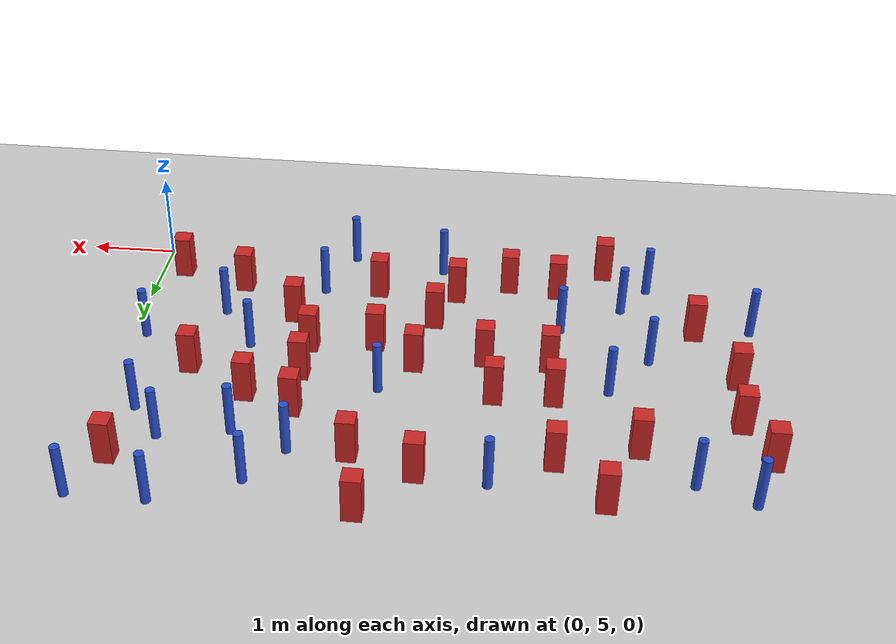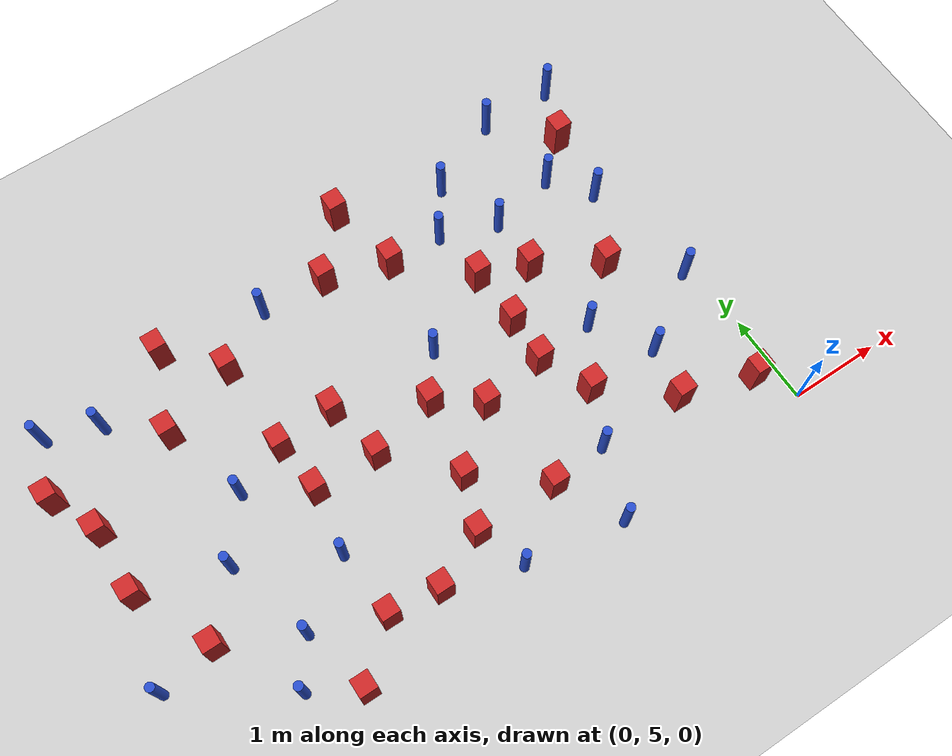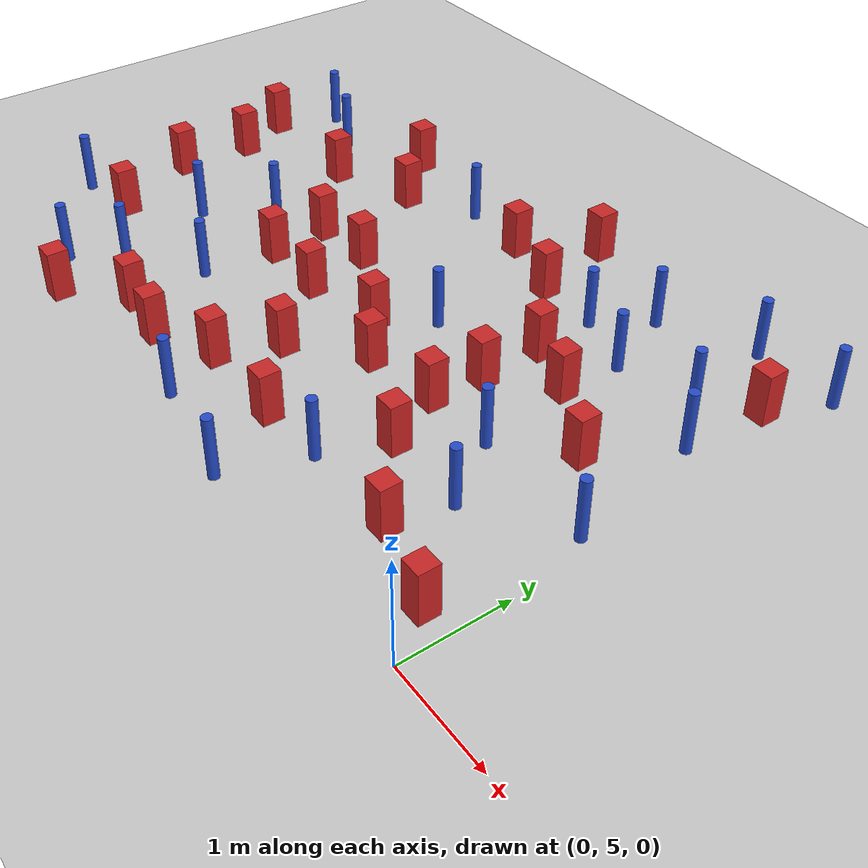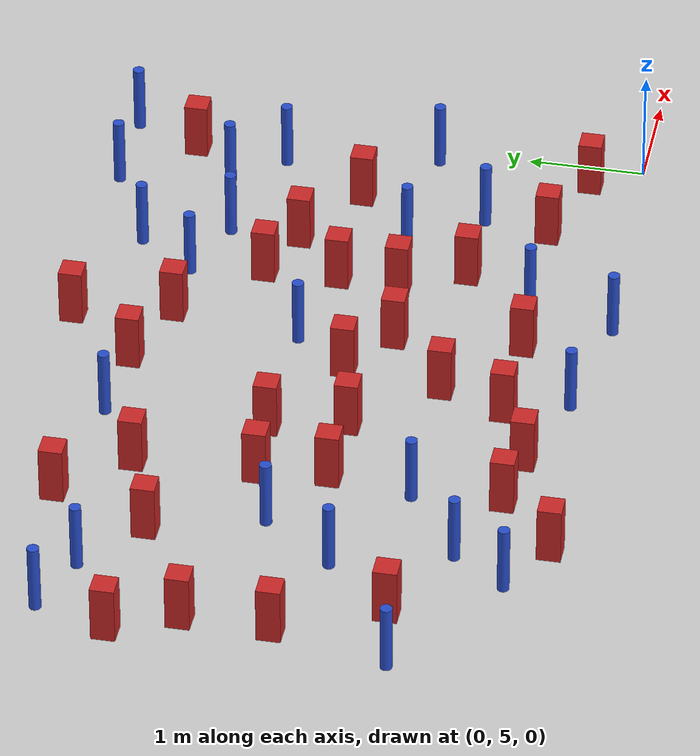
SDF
<sdf version="1.6">
 <world name="default">
  <model name="ground_plane">
   <static>1</static>
   <link name="link">
    <collision name="collision">
     <geometry><plane><normal>0 0 1</normal><size>100 100</size></plane></geometry>
     <surface><friction><ode><mu>100</mu><mu2>50</mu2></ode></friction></surface>
    </collision>
    <visual name="visual">
     <cast_shadows>0</cast_shadows>
     <geometry><plane><normal>0 0 1</normal><size>100 100</size></plane></geometry>
     <material>
      <ambient>1.0 1.0 1.0 1.0</ambient>
      <diffuse>0.8 0.8 0.8 1.0</diffuse>
      <specular>0.01 0.01 0.01 1.000000</specular>
     </material>
    </visual>
   </link>
  </model>
  <model name="square_post_obstacle23">
   <static>true</static>
   <pose>-2.03721567945 7.30508240218 8.22691968438e-08 7.22125133819e-06 -7.54495500217e-07 2.29674213826e-05</pose>
   <link name="link">
    <pose>0 0 0.25 0 -0 0</pose>
    <inertial>
     <mass>100</mass>
     <inertia>
      <ixx>0.166667</ixx>
      <ixy>0</ixy>
      <ixz>0</ixz>
      <iyy>0.166667</iyy>
      <iyz>0</iyz>
      <izz>0.166667</izz>
     </inertia>
    </inertial>
    <collision name="collision"><geometry><box><size>.2 .2 .5</size></box></geometry></collision>
    <visual name="visual">
     <geometry><box><size>.2 .2 .5</size></box></geometry>
     <material>
      <script><name>Gazebo/Red</name><uri>file://media/materials/scripts/gazebo.material</uri></script>
     </material>
    </visual>
   </link>
  </model>
  <model name="pole_obstacle18">
   <static>true</static>
   <pose>-5.83066934576 5.21732926426 2.88873142074e-08 -9.90536690842e-09 4.60219948965e-07 -1.20965994976e-07</pose>
   <link name="link">
    <pose>0 0 0.3 0 -0 0</pose>
    <inertial>
     <mass>1</mass>
     <inertia><ixx>0.145833</ixx><ixy>0</ixy><ixz>0</ixz><iyy>0.145833</iyy><iyz>0</iyz><izz>0.125</izz></inertia>
    </inertial>
    <collision name="collision">
     <geometry><cylinder><radius>0.05</radius><length>.6</length></cylinder></geometry>
    </collision>
    <visual name="visual">
     <geometry><cylinder><radius>0.05</radius><length>.6</length></cylinder></geometry>
     <material>
      <script><name>Gazebo/Blue</name><uri>file://media/materials/scripts/gazebo.material</uri></script>
     </material>
    </visual>
   </link>
  </model>
  <model name="pole_obstacle21">
   <static>true</static>
   <pose>-5.81307885209 6.64387147865 2.88873142074e-08 -9.90536690842e-09 4.60219948965e-07 -1.20965994976e-07</pose>
   <link name="link">
    <pose>0 0 0.3 0 -0 0</pose>
    <inertial>
     <mass>1</mass>
     <inertia><ixx>0.145833</ixx><ixy>0</ixy><ixz>0</ixz><iyy>0.145833</iyy><iyz>0</iyz><izz>0.125</izz></inertia>
    </inertial>
    <collision name="collision">
     <geometry><cylinder><radius>0.05</radius><length>.6</length></cylinder></geometry>
    </collision>
    <visual name="visual">
     <geometry><cylinder><radius>0.05</radius><length>.6</length></cylinder></geometry>
     <material>
      <script><name>Gazebo/Blue</name><uri>file://media/materials/scripts/gazebo.material</uri></script>
     </material>
    </visual>
   </link>
  </model>
  <model name="pole_obstacle26">
   <static>true</static>
   <pose>-1.78886491877 9.06825617732 2.88873142074e-08 -9.90536690474e-09 4.60219948974e-07 -1.2096599497e-07</pose>
   <link name="link">
    <pose>0 0 0.3 0 -0 0</pose>
    <inertial>
     <mass>1</mass>
     <inertia><ixx>0.145833</ixx><ixy>0</ixy><ixz>0</ixz><iyy>0.145833</iyy><iyz>0</iyz><izz>0.125</izz></inertia>
    </inertial>
    <collision name="collision">
     <geometry><cylinder><radius>0.05</radius><length>.6</length></cylinder></geometry>
    </collision>
    <visual name="visual">
     <geometry><cylinder><radius>0.05</radius><length>.6</length></cylinder></geometry>
     <material>
      <script><name>Gazebo/Blue</name><uri>file://media/materials/scripts/gazebo.material</uri></script>
     </material>
    </visual>
   </link>
  </model>
  <model name="square_post_obstacle33">
   <static>true</static>
   <pose>-0.277328488104 5.42035148456 8.22691968438e-08 7.2212513382e-06 -7.54495500217e-07 2.29674213826e-05</pose>
   <link name="link">
    <pose>0 0 0.25 0 -0 0</pose>
    <inertial>
     <mass>100</mass>
     <inertia>
      <ixx>0.166667</ixx>
      <ixy>0</ixy>
      <ixz>0</ixz>
      <iyy>0.166667</iyy>
      <iyz>0</iyz>
      <izz>0.166667</izz>
     </inertia>
    </inertial>
    <collision name="collision"><geometry><box><size>.2 .2 .5</size></box></geometry></collision>
    <visual name="visual">
     <geometry><box><size>.2 .2 .5</size></box></geometry>
     <material>
      <script><name>Gazebo/Red</name><uri>file://media/materials/scripts/gazebo.material</uri></script>
     </material>
    </visual>
   </link>
  </model>
  <model name="pole_obstacle31">
   <static>true</static>
   <pose>-0.417944237807 8.08118357033 2.88873142074e-08 -9.90536691079e-09 4.6021994896e-07 -1.2096599498e-07</pose>
   <link name="link">
    <pose>0 0 0.3 0 -0 0</pose>
    <inertial>
     <mass>1</mass>
     <inertia><ixx>0.145833</ixx><ixy>0</ixy><ixz>0</ixz><iyy>0.145833</iyy><iyz>0</iyz><izz>0.125</izz></inertia>
    </inertial>
    <collision name="collision">
     <geometry><cylinder><radius>0.05</radius><length>.6</length></cylinder></geometry>
    </collision>
    <visual name="visual">
     <geometry><cylinder><radius>0.05</radius><length>.6</length></cylinder></geometry>
     <material>
      <script><name>Gazebo/Blue</name><uri>file://media/materials/scripts/gazebo.material</uri></script>
     </material>
    </visual>
   </link>
  </model>
  <model name="square_post_obstacle39">
   <static>true</static>
   <pose>-5.65905650913 8.18538697839 8.22691968438e-08 7.22125133819e-06 -7.54495500217e-07 2.29674213826e-05</pose>
   <link name="link">
    <pose>0 0 0.25 0 -0 0</pose>
    <inertial>
     <mass>100</mass>
     <inertia>
      <ixx>0.166667</ixx>
      <ixy>0</ixy>
      <ixz>0</ixz>
      <iyy>0.166667</iyy>
      <iyz>0</iyz>
      <izz>0.166667</izz>
     </inertia>
    </inertial>
    <collision name="collision"><geometry><box><size>.2 .2 .5</size></box></geometry></collision>
    <visual name="visual">
     <geometry><box><size>.2 .2 .5</size></box></geometry>
     <material>
      <script><name>Gazebo/Red</name><uri>file://media/materials/scripts/gazebo.material</uri></script>
     </material>
    </visual>
   </link>
  </model>
  <model name="pole_obstacle40">
   <static>true</static>
   <pose>-4.17911712455 8.85904856258 2.88873142074e-08 -9.9053668967e-09 4.60219948993e-07 -1.20965994957e-07</pose>
   <link name="link">
    <pose>0 0 0.3 0 -0 0</pose>
    <inertial>
     <mass>1</mass>
     <inertia><ixx>0.145833</ixx><ixy>0</ixy><ixz>0</ixz><iyy>0.145833</iyy><iyz>0</iyz><izz>0.125</izz></inertia>
    </inertial>
    <collision name="collision">
     <geometry><cylinder><radius>0.05</radius><length>.6</length></cylinder></geometry>
    </collision>
    <visual name="visual">
     <geometry><cylinder><radius>0.05</radius><length>.6</length></cylinder></geometry>
     <material>
      <script><name>Gazebo/Blue</name><uri>file://media/materials/scripts/gazebo.material</uri></script>
     </material>
    </visual>
   </link>
  </model>
  <model name="square_post_obstacle40">
   <static>true</static>
   <pose>-6.33078447611 6.07081158083 8.22691968438e-08 7.2212513382e-06 -7.54495500217e-07 2.29674213826e-05</pose>
   <link name="link">
    <pose>0 0 0.25 0 -0 0</pose>
    <inertial>
     <mass>100</mass>
     <inertia>
      <ixx>0.166667</ixx>
      <ixy>0</ixy>
      <ixz>0</ixz>
      <iyy>0.166667</iyy>
      <iyz>0</iyz>
      <izz>0.166667</izz>
     </inertia>
    </inertial>
    <collision name="collision"><geometry><box><size>.2 .2 .5</size></box></geometry></collision>
    <visual name="visual">
     <geometry><box><size>.2 .2 .5</size></box></geometry>
     <material>
      <script><name>Gazebo/Red</name><uri>file://media/materials/scripts/gazebo.material</uri></script>
     </material>
    </visual>
   </link>
  </model>
  <model name="pole_obstacle47">
   <static>true</static>
   <pose>-6.76543494305 8.84364225365 2.88873142074e-08 -9.9053668967e-09 4.60219948993e-07 -1.20965994957e-07</pose>
   <link name="link">
    <pose>0 0 0.3 0 -0 0</pose>
    <inertial>
     <mass>1</mass>
     <inertia><ixx>0.145833</ixx><ixy>0</ixy><ixz>0</ixz><iyy>0.145833</iyy><iyz>0</iyz><izz>0.125</izz></inertia>
    </inertial>
    <collision name="collision">
     <geometry><cylinder><radius>0.05</radius><length>.6</length></cylinder></geometry>
    </collision>
    <visual name="visual">
     <geometry><cylinder><radius>0.05</radius><length>.6</length></cylinder></geometry>
     <material>
      <script><name>Gazebo/Blue</name><uri>file://media/materials/scripts/gazebo.material</uri></script>
     </material>
    </visual>
   </link>
  </model>
  <model name="pole_obstacle49">
   <static>true</static>
   <pose>-2.91385041379 7.47918186781 2.88873142074e-08 -9.90536689859e-09 4.60219948989e-07 -1.20965994961e-07</pose>
   <link name="link">
    <pose>0 0 0.3 0 -0 0</pose>
    <inertial>
     <mass>1</mass>
     <inertia><ixx>0.145833</ixx><ixy>0</ixy><ixz>0</ixz><iyy>0.145833</iyy><iyz>0</iyz><izz>0.125</izz></inertia>
    </inertial>
    <collision name="collision">
     <geometry><cylinder><radius>0.05</radius><length>.6</length></cylinder></geometry>
    </collision>
    <visual name="visual">
     <geometry><cylinder><radius>0.05</radius><length>.6</length></cylinder></geometry>
     <material>
      <script><name>Gazebo/Blue</name><uri>file://media/materials/scripts/gazebo.material</uri></script>
     </material>
    </visual>
   </link>
  </model>
  <model name="square_post_obstacle49">
   <static>true</static>
   <pose>-3.45285570284 8.80713454996 8.22691968438e-08 7.2212513382e-06 -7.54495500217e-07 2.29674213826e-05</pose>
   <link name="link">
    <pose>0 0 0.25 0 -0 0</pose>
    <inertial>
     <mass>100</mass>
     <inertia>
      <ixx>0.166667</ixx>
      <ixy>0</ixy>
      <ixz>0</ixz>
      <iyy>0.166667</iyy>
      <iyz>0</iyz>
      <izz>0.166667</izz>
     </inertia>
    </inertial>
    <collision name="collision"><geometry><box><size>.2 .2 .5</size></box></geometry></collision>
    <visual name="visual">
     <geometry><box><size>.2 .2 .5</size></box></geometry>
     <material>
      <script><name>Gazebo/Red</name><uri>file://media/materials/scripts/gazebo.material</uri></script>
     </material>
    </visual>
   </link>
  </model>
  <model name="pole_obstacle55">
   <static>true</static>
   <pose>-3.39959192667 5.0782139618 2.88873142074e-08 -9.90536689859e-09 4.60219948989e-07 -1.20965994961e-07</pose>
   <link name="link">
    <pose>0 0 0.3 0 -0 0</pose>
    <inertial>
     <mass>1</mass>
     <inertia><ixx>0.145833</ixx><ixy>0</ixy><ixz>0</ixz><iyy>0.145833</iyy><iyz>0</iyz><izz>0.125</izz></inertia>
    </inertial>
    <collision name="collision">
     <geometry><cylinder><radius>0.05</radius><length>.6</length></cylinder></geometry>
    </collision>
    <visual name="visual">
     <geometry><cylinder><radius>0.05</radius><length>.6</length></cylinder></geometry>
     <material>
      <script><name>Gazebo/Blue</name><uri>file://media/materials/scripts/gazebo.material</uri></script>
     </material>
    </visual>
   </link>
  </model>
  <model name="square_post_obstacle59">
   <static>true</static>
   <pose>-1.52378038873 7.73787321215 8.22691968438e-08 7.2212513382e-06 -7.54495500217e-07 2.29674213826e-05</pose>
   <link name="link">
    <pose>0 0 0.25 0 -0 0</pose>
    <inertial>
     <mass>100</mass>
     <inertia>
      <ixx>0.166667</ixx>
      <ixy>0</ixy>
      <ixz>0</ixz>
      <iyy>0.166667</iyy>
      <iyz>0</iyz>
      <izz>0.166667</izz>
     </inertia>
    </inertial>
    <collision name="collision"><geometry><box><size>.2 .2 .5</size></box></geometry></collision>
    <visual name="visual">
     <geometry><box><size>.2 .2 .5</size></box></geometry>
     <material>
      <script><name>Gazebo/Red</name><uri>file://media/materials/scripts/gazebo.material</uri></script>
     </material>
    </visual>
   </link>
  </model>
  <model name="pole_obstacle58">
   <static>true</static>
   <pose>-0.767167672992 8.51254749859 2.88873142074e-08 -9.90536690779e-09 4.60219948967e-07 -1.20965994975e-07</pose>
   <link name="link">
    <pose>0 0 0.3 0 -0 0</pose>
    <inertial>
     <mass>1</mass>
     <inertia><ixx>0.145833</ixx><ixy>0</ixy><ixz>0</ixz><iyy>0.145833</iyy><iyz>0</iyz><izz>0.125</izz></inertia>
    </inertial>
    <collision name="collision">
     <geometry><cylinder><radius>0.05</radius><length>.6</length></cylinder></geometry>
    </collision>
    <visual name="visual">
     <geometry><cylinder><radius>0.05</radius><length>.6</length></cylinder></geometry>
     <material>
      <script><name>Gazebo/Blue</name><uri>file://media/materials/scripts/gazebo.material</uri></script>
     </material>
    </visual>
   </link>
  </model>
  <model name="pole_obstacle62">
   <static>true</static>
   <pose>-0.973385768933 6.22614700067 2.88873142074e-08 -9.90536689644e-09 4.60219948994e-07 -1.20965994957e-07</pose>
   <link name="link">
    <pose>0 0 0.3 0 -0 0</pose>
    <inertial>
     <mass>1</mass>
     <inertia><ixx>0.145833</ixx><ixy>0</ixy><ixz>0</ixz><iyy>0.145833</iyy><iyz>0</iyz><izz>0.125</izz></inertia>
    </inertial>
    <collision name="collision">
     <geometry><cylinder><radius>0.05</radius><length>.6</length></cylinder></geometry>
    </collision>
    <visual name="visual">
     <geometry><cylinder><radius>0.05</radius><length>.6</length></cylinder></geometry>
     <material>
      <script><name>Gazebo/Blue</name><uri>file://media/materials/scripts/gazebo.material</uri></script>
     </material>
    </visual>
   </link>
  </model>
  <model name="pole_obstacle64">
   <static>true</static>
   <pose>-0.170004056576 6.77155879923 2.88873142074e-08 -9.90536689816e-09 4.6021994899e-07 -1.20965994961e-07</pose>
   <link name="link">
    <pose>0 0 0.3 0 -0 0</pose>
    <inertial>
     <mass>1</mass>
     <inertia><ixx>0.145833</ixx><ixy>0</ixy><ixz>0</ixz><iyy>0.145833</iyy><iyz>0</iyz><izz>0.125</izz></inertia>
    </inertial>
    <collision name="collision">
     <geometry><cylinder><radius>0.05</radius><length>.6</length></cylinder></geometry>
    </collision>
    <visual name="visual">
     <geometry><cylinder><radius>0.05</radius><length>.6</length></cylinder></geometry>
     <material>
      <script><name>Gazebo/Blue</name><uri>file://media/materials/scripts/gazebo.material</uri></script>
     </material>
    </visual>
   </link>
  </model>
  <model name="pole_obstacle66">
   <static>true</static>
   <pose>-4.83158280533 6.15363219573 2.88873142074e-08 -9.90536690842e-09 4.60219948965e-07 -1.20965994976e-07</pose>
   <link name="link">
    <pose>0 0 0.3 0 -0 0</pose>
    <inertial>
     <mass>1</mass>
     <inertia><ixx>0.145833</ixx><ixy>0</ixy><ixz>0</ixz><iyy>0.145833</iyy><iyz>0</iyz><izz>0.125</izz></inertia>
    </inertial>
    <collision name="collision">
     <geometry><cylinder><radius>0.05</radius><length>.6</length></cylinder></geometry>
    </collision>
    <visual name="visual">
     <geometry><cylinder><radius>0.05</radius><length>.6</length></cylinder></geometry>
     <material>
      <script><name>Gazebo/Blue</name><uri>file://media/materials/scripts/gazebo.material</uri></script>
     </material>
    </visual>
   </link>
  </model>
  <model name="square_post_obstacle70">
   <static>true</static>
   <pose>-3.60672216604 5.60611077449 8.22691968438e-08 7.2212513382e-06 -7.54495500217e-07 2.29674213826e-05</pose>
   <link name="link">
    <pose>0 0 0.25 0 -0 0</pose>
    <inertial>
     <mass>100</mass>
     <inertia>
      <ixx>0.166667</ixx>
      <ixy>0</ixy>
      <ixz>0</ixz>
      <iyy>0.166667</iyy>
      <iyz>0</iyz>
      <izz>0.166667</izz>
     </inertia>
    </inertial>
    <collision name="collision"><geometry><box><size>.2 .2 .5</size></box></geometry></collision>
    <visual name="visual">
     <geometry><box><size>.2 .2 .5</size></box></geometry>
     <material>
      <script><name>Gazebo/Red</name><uri>file://media/materials/scripts/gazebo.material</uri></script>
     </material>
    </visual>
   </link>
  </model>
  <model name="square_post_obstacle79">
   <static>true</static>
   <pose>-3.3960211782 6.16891573033 8.22691968438e-08 7.2212513382e-06 -7.54495500217e-07 2.29674213826e-05</pose>
   <link name="link">
    <pose>0 0 0.25 0 -0 0</pose>
    <inertial>
     <mass>100</mass>
     <inertia>
      <ixx>0.166667</ixx>
      <ixy>0</ixy>
      <ixz>0</ixz>
      <iyy>0.166667</iyy>
      <iyz>0</iyz>
      <izz>0.166667</izz>
     </inertia>
    </inertial>
    <collision name="collision"><geometry><box><size>.2 .2 .5</size></box></geometry></collision>
    <visual name="visual">
     <geometry><box><size>.2 .2 .5</size></box></geometry>
     <material>
      <script><name>Gazebo/Red</name><uri>file://media/materials/scripts/gazebo.material</uri></script>
     </material>
    </visual>
   </link>
  </model>
  <model name="square_post_obstacle83">
   <static>true</static>
   <pose>-2.78499705302 6.6787587721 8.22691968438e-08 7.2212513382e-06 -7.54495500217e-07 2.29674213826e-05</pose>
   <link name="link">
    <pose>0 0 0.25 0 -0 0</pose>
    <inertial>
     <mass>100</mass>
     <inertia>
      <ixx>0.166667</ixx>
      <ixy>0</ixy>
      <ixz>0</ixz>
      <iyy>0.166667</iyy>
      <iyz>0</iyz>
      <izz>0.166667</izz>
     </inertia>
    </inertial>
    <collision name="collision"><geometry><box><size>.2 .2 .5</size></box></geometry></collision>
    <visual name="visual">
     <geometry><box><size>.2 .2 .5</size></box></geometry>
     <material>
      <script><name>Gazebo/Red</name><uri>file://media/materials/scripts/gazebo.material</uri></script>
     </material>
    </visual>
   </link>
  </model>
  <model name="square_post_obstacle90">
   <static>true</static>
   <pose>-2.93710106599 9.41357612494 8.22691968438e-08 7.22125133819e-06 -7.54495500217e-07 2.29674213826e-05</pose>
   <link name="link">
    <pose>0 0 0.25 0 -0 0</pose>
    <inertial>
     <mass>100</mass>
     <inertia>
      <ixx>0.166667</ixx>
      <ixy>0</ixy>
      <ixz>0</ixz>
      <iyy>0.166667</iyy>
      <iyz>0</iyz>
      <izz>0.166667</izz>
     </inertia>
    </inertial>
    <collision name="collision"><geometry><box><size>.2 .2 .5</size></box></geometry></collision>
    <visual name="visual">
     <geometry><box><size>.2 .2 .5</size></box></geometry>
     <material>
      <script><name>Gazebo/Red</name><uri>file://media/materials/scripts/gazebo.material</uri></script>
     </material>
    </visual>
   </link>
  </model>
  <model name="pole_obstacle103">
   <static>true</static>
   <pose>-0.934463599325 9.46222303915 2.88873142074e-08 -9.90536690779e-09 4.60219948967e-07 -1.20965994975e-07</pose>
   <link name="link">
    <pose>0 0 0.3 0 -0 0</pose>
    <inertial>
     <mass>1</mass>
     <inertia><ixx>0.145833</ixx><ixy>0</ixy><ixz>0</ixz><iyy>0.145833</iyy><iyz>0</iyz><izz>0.125</izz></inertia>
    </inertial>
    <collision name="collision">
     <geometry><cylinder><radius>0.05</radius><length>.6</length></cylinder></geometry>
    </collision>
    <visual name="visual">
     <geometry><cylinder><radius>0.05</radius><length>.6</length></cylinder></geometry>
     <material>
      <script><name>Gazebo/Blue</name><uri>file://media/materials/scripts/gazebo.material</uri></script>
     </material>
    </visual>
   </link>
  </model>
  <model name="square_post_obstacle98">
   <static>true</static>
   <pose>-6.73910009144 6.9314279743 8.22691968438e-08 7.22125133819e-06 -7.54495500217e-07 2.29674213826e-05</pose>
   <link name="link">
    <pose>0 0 0.25 0 -0 0</pose>
    <inertial>
     <mass>100</mass>
     <inertia>
      <ixx>0.166667</ixx>
      <ixy>0</ixy>
      <ixz>0</ixz>
      <iyy>0.166667</iyy>
      <iyz>0</iyz>
      <izz>0.166667</izz>
     </inertia>
    </inertial>
    <collision name="collision"><geometry><box><size>.2 .2 .5</size></box></geometry></collision>
    <visual name="visual">
     <geometry><box><size>.2 .2 .5</size></box></geometry>
     <material>
      <script><name>Gazebo/Red</name><uri>file://media/materials/scripts/gazebo.material</uri></script>
     </material>
    </visual>
   </link>
  </model>
  <model name="pole_obstacle113">
   <static>true</static>
   <pose>-2.30934450533 4.89970901909 2.88873142074e-08 -9.90536689859e-09 4.60219948989e-07 -1.20965994961e-07</pose>
   <link name="link">
    <pose>0 0 0.3 0 -0 0</pose>
    <inertial>
     <mass>1</mass>
     <inertia><ixx>0.145833</ixx><ixy>0</ixy><ixz>0</ixz><iyy>0.145833</iyy><iyz>0</iyz><izz>0.125</izz></inertia>
    </inertial>
    <collision name="collision">
     <geometry><cylinder><radius>0.05</radius><length>.6</length></cylinder></geometry>
    </collision>
    <visual name="visual">
     <geometry><cylinder><radius>0.05</radius><length>.6</length></cylinder></geometry>
     <material>
      <script><name>Gazebo/Blue</name><uri>file://media/materials/scripts/gazebo.material</uri></script>
     </material>
    </visual>
   </link>
  </model>
  <model name="pole_obstacle135">
   <static>true</static>
   <pose>-5.367915958 7.25028434685 2.88873142074e-08 -9.90536690842e-09 4.60219948965e-07 -1.20965994976e-07</pose>
   <link name="link">
    <pose>0 0 0.3 0 -0 0</pose>
    <inertial>
     <mass>1</mass>
     <inertia><ixx>0.145833</ixx><ixy>0</ixy><ixz>0</ixz><iyy>0.145833</iyy><iyz>0</iyz><izz>0.125</izz></inertia>
    </inertial>
    <collision name="collision">
     <geometry><cylinder><radius>0.05</radius><length>.6</length></cylinder></geometry>
    </collision>
    <visual name="visual">
     <geometry><cylinder><radius>0.05</radius><length>.6</length></cylinder></geometry>
     <material>
      <script><name>Gazebo/Blue</name><uri>file://media/materials/scripts/gazebo.material</uri></script>
     </material>
    </visual>
   </link>
  </model>
  <model name="square_post_obstacle116">
   <static>true</static>
   <pose>-5.32234836291 9.02516183719 8.22691968438e-08 7.22125133819e-06 -7.54495500217e-07 2.29674213826e-05</pose>
   <link name="link">
    <pose>0 0 0.25 0 -0 0</pose>
    <inertial>
     <mass>100</mass>
     <inertia>
      <ixx>0.166667</ixx>
      <ixy>0</ixy>
      <ixz>0</ixz>
      <iyy>0.166667</iyy>
      <iyz>0</iyz>
      <izz>0.166667</izz>
     </inertia>
    </inertial>
    <collision name="collision"><geometry><box><size>.2 .2 .5</size></box></geometry></collision>
    <visual name="visual">
     <geometry><box><size>.2 .2 .5</size></box></geometry>
     <material>
      <script><name>Gazebo/Red</name><uri>file://media/materials/scripts/gazebo.material</uri></script>
     </material>
    </visual>
   </link>
  </model>
  <model name="square_post_obstacle123">
   <static>true</static>
   <pose>-4.7758679637 5.40082395949 8.22691968438e-08 7.2212513382e-06 -7.54495500217e-07 2.29674213826e-05</pose>
   <link name="link">
    <pose>0 0 0.25 0 -0 0</pose>
    <inertial>
     <mass>100</mass>
     <inertia>
      <ixx>0.166667</ixx>
      <ixy>0</ixy>
      <ixz>0</ixz>
      <iyy>0.166667</iyy>
      <iyz>0</iyz>
      <izz>0.166667</izz>
     </inertia>
    </inertial>
    <collision name="collision"><geometry><box><size>.2 .2 .5</size></box></geometry></collision>
    <visual name="visual">
     <geometry><box><size>.2 .2 .5</size></box></geometry>
     <material>
      <script><name>Gazebo/Red</name><uri>file://media/materials/scripts/gazebo.material</uri></script>
     </material>
    </visual>
   </link>
  </model>
  <model name="square_post_obstacle132">
   <static>true</static>
   <pose>-1.78472021985 6.23317396464 8.22691968438e-08 7.2212513382e-06 -7.54495500217e-07 2.29674213826e-05</pose>
   <link name="link">
    <pose>0 0 0.25 0 -0 0</pose>
    <inertial>
     <mass>100</mass>
     <inertia>
      <ixx>0.166667</ixx>
      <ixy>0</ixy>
      <ixz>0</ixz>
      <iyy>0.166667</iyy>
      <iyz>0</iyz>
      <izz>0.166667</izz>
     </inertia>
    </inertial>
    <collision name="collision"><geometry><box><size>.2 .2 .5</size></box></geometry></collision>
    <visual name="visual">
     <geometry><box><size>.2 .2 .5</size></box></geometry>
     <material>
      <script><name>Gazebo/Red</name><uri>file://media/materials/scripts/gazebo.material</uri></script>
     </material>
    </visual>
   </link>
  </model>
  <model name="square_post_obstacle137">
   <static>true</static>
   <pose>-4.72083079073 6.8576199152 8.22691968438e-08 7.22125133819e-06 -7.54495500217e-07 2.29674213826e-05</pose>
   <link name="link">
    <pose>0 0 0.25 0 -0 0</pose>
    <inertial>
     <mass>100</mass>
     <inertia>
      <ixx>0.166667</ixx>
      <ixy>0</ixy>
      <ixz>0</ixz>
      <iyy>0.166667</iyy>
      <iyz>0</iyz>
      <izz>0.166667</izz>
     </inertia>
    </inertial>
    <collision name="collision"><geometry><box><size>.2 .2 .5</size></box></geometry></collision>
    <visual name="visual">
     <geometry><box><size>.2 .2 .5</size></box></geometry>
     <material>
      <script><name>Gazebo/Red</name><uri>file://media/materials/scripts/gazebo.material</uri></script>
     </material>
    </visual>
   </link>
  </model>
  <model name="square_post_obstacle139">
   <static>true</static>
   <pose>-2.0536299165 6.78452922206 8.22691968438e-08 7.22125133819e-06 -7.54495500217e-07 2.29674213826e-05</pose>
   <link name="link">
    <pose>0 0 0.25 0 -0 0</pose>
    <inertial>
     <mass>100</mass>
     <inertia>
      <ixx>0.166667</ixx>
      <ixy>0</ixy>
      <ixz>0</ixz>
      <iyy>0.166667</iyy>
      <iyz>0</iyz>
      <izz>0.166667</izz>
     </inertia>
    </inertial>
    <collision name="collision"><geometry><box><size>.2 .2 .5</size></box></geometry></collision>
    <visual name="visual">
     <geometry><box><size>.2 .2 .5</size></box></geometry>
     <material>
      <script><name>Gazebo/Red</name><uri>file://media/materials/scripts/gazebo.material</uri></script>
     </material>
    </visual>
   </link>
  </model>
  <model name="square_post_obstacle140">
   <static>true</static>
   <pose>-4.14640272712 7.49137145564 8.22691968438e-08 7.22125133819e-06 -7.54495500217e-07 2.29674213826e-05</pose>
   <link name="link">
    <pose>0 0 0.25 0 -0 0</pose>
    <inertial>
     <mass>100</mass>
     <inertia>
      <ixx>0.166667</ixx>
      <ixy>0</ixy>
      <ixz>0</ixz>
      <iyy>0.166667</iyy>
      <iyz>0</iyz>
      <izz>0.166667</izz>
     </inertia>
    </inertial>
    <collision name="collision"><geometry><box><size>.2 .2 .5</size></box></geometry></collision>
    <visual name="visual">
     <geometry><box><size>.2 .2 .5</size></box></geometry>
     <material>
      <script><name>Gazebo/Red</name><uri>file://media/materials/scripts/gazebo.material</uri></script>
     </material>
    </visual>
   </link>
  </model>
  <model name="square_post_obstacle143">
   <static>true</static>
   <pose>-2.05941243781 7.93873972908 8.22691968438e-08 7.22125133819e-06 -7.54495500217e-07 2.29674213826e-05</pose>
   <link name="link">
    <pose>0 0 0.25 0 -0 0</pose>
    <inertial>
     <mass>100</mass>
     <inertia>
      <ixx>0.166667</ixx>
      <ixy>0</ixy>
      <ixz>0</ixz>
      <iyy>0.166667</iyy>
      <iyz>0</iyz>
      <izz>0.166667</izz>
     </inertia>
    </inertial>
    <collision name="collision"><geometry><box><size>.2 .2 .5</size></box></geometry></collision>
    <visual name="visual">
     <geometry><box><size>.2 .2 .5</size></box></geometry>
     <material>
      <script><name>Gazebo/Red</name><uri>file://media/materials/scripts/gazebo.material</uri></script>
     </material>
    </visual>
   </link>
  </model>
  <model name="pole_obstacle154">
   <static>true</static>
   <pose>-0.116994946335 9.46513758642 2.88873142074e-08 -9.905366905e-09 4.60219948973e-07 -1.20965994971e-07</pose>
   <link name="link">
    <pose>0 0 0.3 0 -0 0</pose>
    <inertial>
     <mass>1</mass>
     <inertia><ixx>0.145833</ixx><ixy>0</ixy><ixz>0</ixz><iyy>0.145833</iyy><iyz>0</iyz><izz>0.125</izz></inertia>
    </inertial>
    <collision name="collision">
     <geometry><cylinder><radius>0.05</radius><length>.6</length></cylinder></geometry>
    </collision>
    <visual name="visual">
     <geometry><cylinder><radius>0.05</radius><length>.6</length></cylinder></geometry>
     <material>
      <script><name>Gazebo/Blue</name><uri>file://media/materials/scripts/gazebo.material</uri></script>
     </material>
    </visual>
   </link>
  </model>
  <model name="square_post_obstacle147">
   <static>true</static>
   <pose>-4.01087168104 6.83863973808 8.22691968438e-08 7.2212513382e-06 -7.54495500217e-07 2.29674213826e-05</pose>
   <link name="link">
    <pose>0 0 0.25 0 -0 0</pose>
    <inertial>
     <mass>100</mass>
     <inertia>
      <ixx>0.166667</ixx>
      <ixy>0</ixy>
      <ixz>0</ixz>
      <iyy>0.166667</iyy>
      <iyz>0</iyz>
      <izz>0.166667</izz>
     </inertia>
    </inertial>
    <collision name="collision"><geometry><box><size>.2 .2 .5</size></box></geometry></collision>
    <visual name="visual">
     <geometry><box><size>.2 .2 .5</size></box></geometry>
     <material>
      <script><name>Gazebo/Red</name><uri>file://media/materials/scripts/gazebo.material</uri></script>
     </material>
    </visual>
   </link>
  </model>
  <model name="square_post_obstacle149">
   <static>true</static>
   <pose>-4.8137324237 8.47889017384 8.22691968438e-08 7.22125133819e-06 -7.54495500217e-07 2.29674213826e-05</pose>
   <link name="link">
    <pose>0 0 0.25 0 -0 0</pose>
    <inertial>
     <mass>100</mass>
     <inertia>
      <ixx>0.166667</ixx>
      <ixy>0</ixy>
      <ixz>0</ixz>
      <iyy>0.166667</iyy>
      <iyz>0</iyz>
      <izz>0.166667</izz>
     </inertia>
    </inertial>
    <collision name="collision"><geometry><box><size>.2 .2 .5</size></box></geometry></collision>
    <visual name="visual">
     <geometry><box><size>.2 .2 .5</size></box></geometry>
     <material>
      <script><name>Gazebo/Red</name><uri>file://media/materials/scripts/gazebo.material</uri></script>
     </material>
    </visual>
   </link>
  </model>
  <model name="square_post_obstacle154">
   <static>true</static>
   <pose>-6.97279389547 8.22164482969 8.22691968438e-08 7.22125133819e-06 -7.54495500217e-07 2.29674213826e-05</pose>
   <link name="link">
    <pose>0 0 0.25 0 -0 0</pose>
    <inertial>
     <mass>100</mass>
     <inertia>
      <ixx>0.166667</ixx>
      <ixy>0</ixy>
      <ixz>0</ixz>
      <iyy>0.166667</iyy>
      <iyz>0</iyz>
      <izz>0.166667</izz>
     </inertia>
    </inertial>
    <collision name="collision"><geometry><box><size>.2 .2 .5</size></box></geometry></collision>
    <visual name="visual">
     <geometry><box><size>.2 .2 .5</size></box></geometry>
     <material>
      <script><name>Gazebo/Red</name><uri>file://media/materials/scripts/gazebo.material</uri></script>
     </material>
    </visual>
   </link>
  </model>
  <model name="square_post_obstacle162">
   <static>true</static>
   <pose>-0.822993867355 7.32448252914 8.22691968438e-08 7.2212513382e-06 -7.54495500217e-07 2.29674213826e-05</pose>
   <link name="link">
    <pose>0 0 0.25 0 -0 0</pose>
    <inertial>
     <mass>100</mass>
     <inertia>
      <ixx>0.166667</ixx>
      <ixy>0</ixy>
      <ixz>0</ixz>
      <iyy>0.166667</iyy>
      <iyz>0</iyz>
      <izz>0.166667</izz>
     </inertia>
    </inertial>
    <collision name="collision"><geometry><box><size>.2 .2 .5</size></box></geometry></collision>
    <visual name="visual">
     <geometry><box><size>.2 .2 .5</size></box></geometry>
     <material>
      <script><name>Gazebo/Red</name><uri>file://media/materials/scripts/gazebo.material</uri></script>
     </material>
    </visual>
   </link>
  </model>
  <model name="pole_obstacle172">
   <static>true</static>
   <pose>-1.51000144993 8.35186604959 2.88873142074e-08 -9.90536690474e-09 4.60219948974e-07 -1.2096599497e-07</pose>
   <link name="link">
    <pose>0 0 0.3 0 -0 0</pose>
    <inertial>
     <mass>1</mass>
     <inertia><ixx>0.145833</ixx><ixy>0</ixy><ixz>0</ixz><iyy>0.145833</iyy><iyz>0</iyz><izz>0.125</izz></inertia>
    </inertial>
    <collision name="collision">
     <geometry><cylinder><radius>0.05</radius><length>.6</length></cylinder></geometry>
    </collision>
    <visual name="visual">
     <geometry><cylinder><radius>0.05</radius><length>.6</length></cylinder></geometry>
     <material>
      <script><name>Gazebo/Blue</name><uri>file://media/materials/scripts/gazebo.material</uri></script>
     </material>
    </visual>
   </link>
  </model>
  <model name="square_post_obstacle163">
   <static>true</static>
   <pose>-2.68953693435 5.59915584181 8.22691968438e-08 7.2212513382e-06 -7.54495500217e-07 2.29674213826e-05</pose>
   <link name="link">
    <pose>0 0 0.25 0 -0 0</pose>
    <inertial>
     <mass>100</mass>
     <inertia>
      <ixx>0.166667</ixx>
      <ixy>0</ixy>
      <ixz>0</ixz>
      <iyy>0.166667</iyy>
      <iyz>0</iyz>
      <izz>0.166667</izz>
     </inertia>
    </inertial>
    <collision name="collision"><geometry><box><size>.2 .2 .5</size></box></geometry></collision>
    <visual name="visual">
     <geometry><box><size>.2 .2 .5</size></box></geometry>
     <material>
      <script><name>Gazebo/Red</name><uri>file://media/materials/scripts/gazebo.material</uri></script>
     </material>
    </visual>
   </link>
  </model>
  <model name="pole_obstacle177">
   <static>true</static>
   <pose>-6.9670463668 5.95471415634 2.88873142074e-08 -9.90536690842e-09 4.60219948965e-07 -1.20965994976e-07</pose>
   <link name="link">
    <pose>0 0 0.3 0 -0 0</pose>
    <inertial>
     <mass>1</mass>
     <inertia><ixx>0.145833</ixx><ixy>0</ixy><ixz>0</ixz><iyy>0.145833</iyy><iyz>0</iyz><izz>0.125</izz></inertia>
    </inertial>
    <collision name="collision">
     <geometry><cylinder><radius>0.05</radius><length>.6</length></cylinder></geometry>
    </collision>
    <visual name="visual">
     <geometry><cylinder><radius>0.05</radius><length>.6</length></cylinder></geometry>
     <material>
      <script><name>Gazebo/Blue</name><uri>file://media/materials/scripts/gazebo.material</uri></script>
     </material>
    </visual>
   </link>
  </model>
  <model name="pole_obstacle179">
   <static>true</static>
   <pose>-1.38426939868 6.83604866617 2.88873142074e-08 -9.90536689852e-09 4.60219948989e-07 -1.2096599496e-07</pose>
   <link name="link">
    <pose>0 0 0.3 0 -0 0</pose>
    <inertial>
     <mass>1</mass>
     <inertia><ixx>0.145833</ixx><ixy>0</ixy><ixz>0</ixz><iyy>0.145833</iyy><iyz>0</iyz><izz>0.125</izz></inertia>
    </inertial>
    <collision name="collision">
     <geometry><cylinder><radius>0.05</radius><length>.6</length></cylinder></geometry>
    </collision>
    <visual name="visual">
     <geometry><cylinder><radius>0.05</radius><length>.6</length></cylinder></geometry>
     <material>
      <script><name>Gazebo/Blue</name><uri>file://media/materials/scripts/gazebo.material</uri></script>
     </material>
    </visual>
   </link>
  </model>
  <model name="pole_obstacle180">
   <static>true</static>
   <pose>-2.13218096769 8.57735775876 2.88873142074e-08 -9.90536692318e-09 4.6021994893e-07 -1.20965994988e-07</pose>
   <link name="link">
    <pose>0 0 0.3 0 -0 0</pose>
    <inertial>
     <mass>1</mass>
     <inertia><ixx>0.145833</ixx><ixy>0</ixy><ixz>0</ixz><iyy>0.145833</iyy><iyz>0</iyz><izz>0.125</izz></inertia>
    </inertial>
    <collision name="collision">
     <geometry><cylinder><radius>0.05</radius><length>.6</length></cylinder></geometry>
    </collision>
    <visual name="visual">
     <geometry><cylinder><radius>0.05</radius><length>.6</length></cylinder></geometry>
     <material>
      <script><name>Gazebo/Blue</name><uri>file://media/materials/scripts/gazebo.material</uri></script>
     </material>
    </visual>
   </link>
  </model>
  <model name="pole_obstacle183">
   <static>true</static>
   <pose>-2.04496811298 5.65260437798 2.88873142074e-08 -9.90536689575e-09 4.60219948995e-07 -1.20965994956e-07</pose>
   <link name="link">
    <pose>0 0 0.3 0 -0 0</pose>
    <inertial>
     <mass>1</mass>
     <inertia><ixx>0.145833</ixx><ixy>0</ixy><ixz>0</ixz><iyy>0.145833</iyy><iyz>0</iyz><izz>0.125</izz></inertia>
    </inertial>
    <collision name="collision">
     <geometry><cylinder><radius>0.05</radius><length>.6</length></cylinder></geometry>
    </collision>
    <visual name="visual">
     <geometry><cylinder><radius>0.05</radius><length>.6</length></cylinder></geometry>
     <material>
      <script><name>Gazebo/Blue</name><uri>file://media/materials/scripts/gazebo.material</uri></script>
     </material>
    </visual>
   </link>
  </model>
  <model name="square_post_obstacle174">
   <static>true</static>
   <pose>-1.07952991526 5.6597208934 8.22691968438e-08 7.2212513382e-06 -7.54495500217e-07 2.29674213826e-05</pose>
   <link name="link">
    <pose>0 0 0.25 0 -0 0</pose>
    <inertial>
     <mass>100</mass>
     <inertia>
      <ixx>0.166667</ixx>
      <ixy>0</ixy>
      <ixz>0</ixz>
      <iyy>0.166667</iyy>
      <iyz>0</iyz>
      <izz>0.166667</izz>
     </inertia>
    </inertial>
    <collision name="collision"><geometry><box><size>.2 .2 .5</size></box></geometry></collision>
    <visual name="visual">
     <geometry><box><size>.2 .2 .5</size></box></geometry>
     <material>
      <script><name>Gazebo/Red</name><uri>file://media/materials/scripts/gazebo.material</uri></script>
     </material>
    </visual>
   </link>
  </model>
  <model name="square_post_obstacle183">
   <static>true</static>
   <pose>-6.72442157304 7.67144951576 8.22691968438e-08 7.2212513382e-06 -7.54495500217e-07 2.29674213826e-05</pose>
   <link name="link">
    <pose>0 0 0.25 0 -0 0</pose>
    <inertial>
     <mass>100</mass>
     <inertia>
      <ixx>0.166667</ixx>
      <ixy>0</ixy>
      <ixz>0</ixz>
      <iyy>0.166667</iyy>
      <iyz>0</iyz>
      <izz>0.166667</izz>
     </inertia>
    </inertial>
    <collision name="collision"><geometry><box><size>.2 .2 .5</size></box></geometry></collision>
    <visual name="visual">
     <geometry><box><size>.2 .2 .5</size></box></geometry>
     <material>
      <script><name>Gazebo/Red</name><uri>file://media/materials/scripts/gazebo.material</uri></script>
     </material>
    </visual>
   </link>
  </model>
  <model name="square_post_obstacle185">
   <static>true</static>
   <pose>-4.78487393886 7.45186076712 8.22691968438e-08 7.22125133819e-06 -7.54495500217e-07 2.29674213826e-05</pose>
   <link name="link">
    <pose>0 0 0.25 0 -0 0</pose>
    <inertial>
     <mass>100</mass>
     <inertia>
      <ixx>0.166667</ixx>
      <ixy>0</ixy>
      <ixz>0</ixz>
      <iyy>0.166667</iyy>
      <iyz>0</iyz>
      <izz>0.166667</izz>
     </inertia>
    </inertial>
    <collision name="collision"><geometry><box><size>.2 .2 .5</size></box></geometry></collision>
    <visual name="visual">
     <geometry><box><size>.2 .2 .5</size></box></geometry>
     <material>
      <script><name>Gazebo/Red</name><uri>file://media/materials/scripts/gazebo.material</uri></script>
     </material>
    </visual>
   </link>
  </model>
  <model name="square_post_obstacle186">
   <static>true</static>
   <pose>-0.363256985018 8.88498889929 8.22691968438e-08 7.22125133819e-06 -7.54495500217e-07 2.29674213826e-05</pose>
   <link name="link">
    <pose>0 0 0.25 0 -0 0</pose>
    <inertial>
     <mass>100</mass>
     <inertia>
      <ixx>0.166667</ixx>
      <ixy>0</ixy>
      <ixz>0</ixz>
      <iyy>0.166667</iyy>
      <iyz>0</iyz>
      <izz>0.166667</izz>
     </inertia>
    </inertial>
    <collision name="collision"><geometry><box><size>.2 .2 .5</size></box></geometry></collision>
    <visual name="visual">
     <geometry><box><size>.2 .2 .5</size></box></geometry>
     <material>
      <script><name>Gazebo/Red</name><uri>file://media/materials/scripts/gazebo.material</uri></script>
     </material>
    </visual>
   </link>
  </model>
  <model name="square_post_obstacle187">
   <static>true</static>
   <pose>-3.25100922651 7.020102287 8.22691968438e-08 7.2212513382e-06 -7.54495500217e-07 2.29674213826e-05</pose>
   <link name="link">
    <pose>0 0 0.25 0 -0 0</pose>
    <inertial>
     <mass>100</mass>
     <inertia>
      <ixx>0.166667</ixx>
      <ixy>0</ixy>
      <ixz>0</ixz>
      <iyy>0.166667</iyy>
      <iyz>0</iyz>
      <izz>0.166667</izz>
     </inertia>
    </inertial>
    <collision name="collision"><geometry><box><size>.2 .2 .5</size></box></geometry></collision>
    <visual name="visual">
     <geometry><box><size>.2 .2 .5</size></box></geometry>
     <material>
      <script><name>Gazebo/Red</name><uri>file://media/materials/scripts/gazebo.material</uri></script>
     </material>
    </visual>
   </link>
  </model>
  <model name="square_post_obstacle190">
   <static>true</static>
   <pose>-4.21271835784 5.33132043023 8.22691968438e-08 7.22125133819e-06 -7.54495500217e-07 2.29674213826e-05</pose>
   <link name="link">
    <pose>0 0 0.25 0 -0 0</pose>
    <inertial>
     <mass>100</mass>
     <inertia>
      <ixx>0.166667</ixx>
      <ixy>0</ixy>
      <ixz>0</ixz>
      <iyy>0.166667</iyy>
      <iyz>0</iyz>
      <izz>0.166667</izz>
     </inertia>
    </inertial>
    <collision name="collision"><geometry><box><size>.2 .2 .5</size></box></geometry></collision>
    <visual name="visual">
     <geometry><box><size>.2 .2 .5</size></box></geometry>
     <material>
      <script><name>Gazebo/Red</name><uri>file://media/materials/scripts/gazebo.material</uri></script>
     </material>
    </visual>
   </link>
  </model>
  <model name="square_post_obstacle194">
   <static>true</static>
   <pose>-5.3224290576 4.92142555718 8.22691968438e-08 7.22125133819e-06 -7.54495500217e-07 2.29674213826e-05</pose>
   <link name="link">
    <pose>0 0 0.25 0 -0 0</pose>
    <inertial>
     <mass>100</mass>
     <inertia>
      <ixx>0.166667</ixx>
      <ixy>0</ixy>
      <ixz>0</ixz>
      <iyy>0.166667</iyy>
      <iyz>0</iyz>
      <izz>0.166667</izz>
     </inertia>
    </inertial>
    <collision name="collision"><geometry><box><size>.2 .2 .5</size></box></geometry></collision>
    <visual name="visual">
     <geometry><box><size>.2 .2 .5</size></box></geometry>
     <material>
      <script><name>Gazebo/Red</name><uri>file://media/materials/scripts/gazebo.material</uri></script>
     </material>
    </visual>
   </link>
  </model>
  <model name="pole_obstacle208">
   <static>true</static>
   <pose>-6.193630505 8.63445936573 2.88873142074e-08 -9.9053668967e-09 4.60219948993e-07 -1.20965994957e-07</pose>
   <link name="link">
    <pose>0 0 0.3 0 -0 0</pose>
    <inertial>
     <mass>1</mass>
     <inertia><ixx>0.145833</ixx><ixy>0</ixy><ixz>0</ixz><iyy>0.145833</iyy><iyz>0</iyz><izz>0.125</izz></inertia>
    </inertial>
    <collision name="collision">
     <geometry><cylinder><radius>0.05</radius><length>.6</length></cylinder></geometry>
    </collision>
    <visual name="visual">
     <geometry><cylinder><radius>0.05</radius><length>.6</length></cylinder></geometry>
     <material>
      <script><name>Gazebo/Blue</name><uri>file://media/materials/scripts/gazebo.material</uri></script>
     </material>
    </visual>
   </link>
  </model>
  <model name="pole_obstacle209">
   <static>true</static>
   <pose>-5.5223841571 5.67363191582 2.88873142074e-08 -9.90536690842e-09 4.60219948965e-07 -1.20965994976e-07</pose>
   <link name="link">
    <pose>0 0 0.3 0 -0 0</pose>
    <inertial>
     <mass>1</mass>
     <inertia><ixx>0.145833</ixx><ixy>0</ixy><ixz>0</ixz><iyy>0.145833</iyy><iyz>0</iyz><izz>0.125</izz></inertia>
    </inertial>
    <collision name="collision">
     <geometry><cylinder><radius>0.05</radius><length>.6</length></cylinder></geometry>
    </collision>
    <visual name="visual">
     <geometry><cylinder><radius>0.05</radius><length>.6</length></cylinder></geometry>
     <material>
      <script><name>Gazebo/Blue</name><uri>file://media/materials/scripts/gazebo.material</uri></script>
     </material>
    </visual>
   </link>
  </model>
  <model name="square_post_obstacle214">
   <static>true</static>
   <pose>-2.75385996738 8.58283996466 8.22691968438e-08 7.22125133819e-06 -7.54495500217e-07 2.29674213826e-05</pose>
   <link name="link">
    <pose>0 0 0.25 0 -0 0</pose>
    <inertial>
     <mass>100</mass>
     <inertia>
      <ixx>0.166667</ixx>
      <ixy>0</ixy>
      <ixz>0</ixz>
      <iyy>0.166667</iyy>
      <iyz>0</iyz>
      <izz>0.166667</izz>
     </inertia>
    </inertial>
    <collision name="collision"><geometry><box><size>.2 .2 .5</size></box></geometry></collision>
    <visual name="visual">
     <geometry><box><size>.2 .2 .5</size></box></geometry>
     <material>
      <script><name>Gazebo/Red</name><uri>file://media/materials/scripts/gazebo.material</uri></script>
     </material>
    </visual>
   </link>
  </model>
 </world>
</sdf>
